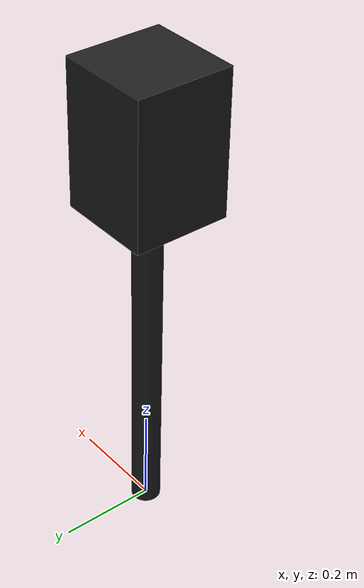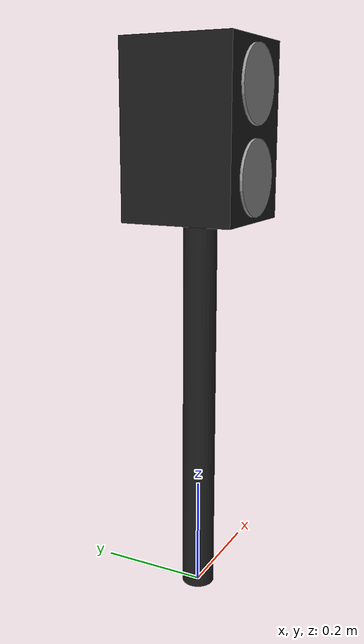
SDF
<?xml version="1.0"?>
<sdf version="1.6">
	<model name="tl">
		<link name="leg">
			<pose>0 0 0.425 0 0 0</pose>
			<inertial>
				<mass>0.00693617</mass>
				<inertia>
					<ixx>0.00058102</ixx><ixy>0</ixy><ixz>0</ixz>
					<iyy>0.00058102</iyy><iyz>0</iyz>
					<izz>6.02e-06</izz>
				</inertia>
			</inertial>
			<gravity>0</gravity>
			<self_collide>0</self_collide>
			<kinematic>0</kinematic>
			<enable_wind>0</enable_wind>
			<visual name="visual">
				<geometry>
					<cylinder>
						<radius>0.03</radius>
						<length>0.85</length>
					</cylinder>
				</geometry>
				<material>
					<script>
						<uri>file://media/materials/scripts/gazebo.material</uri>
						<name>Gazebo/Black</name>
					</script>
				</material>
			</visual>
			<collision name="collision">
				<geometry>
					<cylinder>
						<radius>0.03</radius>
						<length>0.85</length>
					</cylinder>
				</geometry>
			</collision>
		</link>
		<link name="head">
			<pose>0 0 0.85 0 0 0</pose>
			<inertial>
				<mass>0.00693617</mass>
				<inertia>
					<ixx>0.00058102</ixx><ixy>0</ixy><ixz>0</ixz>
					<iyy>0.00058102</iyy><iyz>0</iyz>
					<izz>6.02e-06</izz>
				</inertia>
			</inertial>
			<gravity>0</gravity>
			<self_collide>0</self_collide>
			<kinematic>0</kinematic>
			<enable_wind>0</enable_wind>
			<visual name="visual">
				<geometry>
					<box>
						<size>0.2 0.2 0.3</size>
					</box>
				</geometry>
				<material>
					<script>
						<uri>file://media/materials/scripts/gazebo.material</uri>
						<name>Gazebo/Black</name>
					</script>
				</material>
			</visual>
			<collision name="collision">
				<geometry>
					<box>
						<size>0.2 0.2 0.3</size>
					</box>
				</geometry>
			</collision>
		</link>
		<link name="topSphere">
			<pose>0 -0.09 0.925 1.57 1.57 0</pose>
			<inertial>
				<mass>0.00693617</mass>
				<inertia>
					<ixx>0.00058102</ixx><ixy>0</ixy><ixz>0</ixz>
					<iyy>0.00058102</iyy><iyz>0</iyz>
					<izz>6.02e-06</izz>
				</inertia>
			</inertial>
			<gravity>0</gravity>
			<self_collide>0</self_collide>
			<kinematic>0</kinematic>
			<enable_wind>0</enable_wind>
			<visual name="visual">
				<geometry>
					<cylinder>
						<radius>0.065</radius>
						<length>0.03</length>
					</cylinder>
				</geometry>
					<material>
						<script>
							<uri>file://media/materials/scripts/gazebo.material</uri>
							<name>Gazebo/Grey</name>
						</script>
					</material>
				<plugin name="tf_plugin" filename="libtf_plugin.so"/>
			</visual>
			<collision name="collision">
				<geometry>
					<cylinder>
						<radius>0.065</radius>
						<length>0.03</length>
					</cylinder>
				</geometry>
			</collision>
		</link>
		<link name="bottomSphere">
			<pose>0 -0.09 0.775 1.57 1.57 0</pose>
			<inertial>
				<mass>0.00693617</mass>
				<inertia>
					<ixx>0.00058102</ixx><ixy>0</ixy><ixz>0</ixz>
					<iyy>0.00058102</iyy><iyz>0</iyz>
					<izz>6.02e-06</izz>
				</inertia>
			</inertial>
			<gravity>0</gravity>
			<self_collide>0</self_collide>
			<kinematic>0</kinematic>
			<enable_wind>0</enable_wind>
			<visual name="visual">
				<geometry>
					<cylinder>
						<radius>0.065</radius>
						<length>0.03</length>
					</cylinder>
				</geometry>
				<material>
					<script>
						<uri>file://media/materials/scripts/gazebo.material</uri>
						<name>Gazebo/Grey</name>
					</script>
				</material>
				<plugin name="tf_plugin" filename="libtf_plugin.so"/>
			</visual>
			<collision name="collision">
				<geometry>
					<cylinder>
						<radius>0.065</radius>
						<length>0.03</length>
					</cylinder>
				</geometry>
			</collision>
		</link>
		<static>1</static>
	</model>
</sdf>
